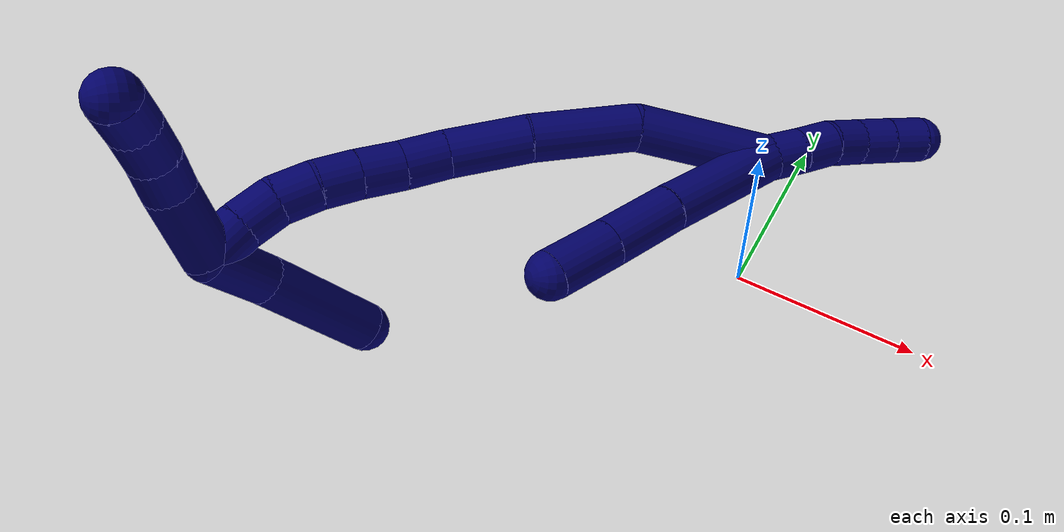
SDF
<sdf version="1.7">
 <world name="default">
  <model name="photoneo_s_sensor">
   <static>1</static>
   <pose>0 0 2 1.57079 1.57079 3.14159</pose>
   <link name="link">
    <inertial><mass>0.1</mass></inertial>
    <sensor name="sensor" type="depth">
     <update_rate>30</update_rate>
     <camera>
      <horizontal_fov>1.22</horizontal_fov>
      <image><width>1920</width><height>1200</height><format>B8G8R8</format></image>
      <clip><near>0.1</near><far>4</far></clip>
      <depth_camera><output>points</output></depth_camera>
     </camera>
     <plugin name="camera_plugin" filename="libgazebo_ros_depth_camera.so">
      <baseline>0.2</baseline>
      <alwaysOn>1</alwaysOn>
      <updateRate>0.0</updateRate>
      <cameraName>camera_ir</cameraName>
      <imageTopicName>/camera/color/image_raw</imageTopicName>
      <cameraInfoTopicName>/camera/color/camera_info</cameraInfoTopicName>
      <depthImageTopicName>/camera/depth/image_raw</depthImageTopicName>
      <depthImageCameraInfoTopicName>/camera/depth/camera_info</depthImageCameraInfoTopicName>
      <pointCloudTopicName>/camera/depth/points</pointCloudTopicName>
      <frameName>fr_optical</frameName>
      <pointCloudCutoff>0.1</pointCloudCutoff>
      <pointCloudCutoffMax>2.0</pointCloudCutoffMax>
      <distortionK1>0</distortionK1>
      <distortionK2>0</distortionK2>
      <distortionK3>0</distortionK3>
      <distortionT1>0</distortionT1>
      <distortionT2>0</distortionT2>
      <CxPrime>0</CxPrime>
      <Cx>0</Cx>
      <Cy>0</Cy>
      <focalLength>0</focalLength>
      <hackBaseline>0</hackBaseline>
     </plugin>
    </sensor>
   </link>
  </model>
  <model name="bin">
   <static>1</static>
   <link name="bottom">
    <collision name="collision-bottom">
     <pose>0 0 -0.01 0 -0 0</pose>
     <geometry><box><size>0.8 0.6 0.02</size></box></geometry>
     <surface>
      <friction><ode><mu>100</mu><mu2>100</mu2></ode></friction>
      <contact><collide_bitmask>65535</collide_bitmask></contact>
     </surface>
    </collision>
   </link>
   <link name="west_wall">
    <collision name="collision-west_wall">
     <pose>-0.41 0 0.1 0 -0 0</pose>
     <geometry><box><size>0.02 0.6 0.2</size></box></geometry>
     <surface>
      <friction><ode><mu>100</mu><mu2>100</mu2></ode></friction>
      <contact><collide_bitmask>65535</collide_bitmask></contact>
     </surface>
    </collision>
   </link>
   <link name="east_wall">
    <collision name="collision-east_wall">
     <pose>0.41 0 0.1 0 -0 0</pose>
     <geometry><box><size>0.02 0.6 0.2</size></box></geometry>
     <surface>
      <friction><ode><mu>100</mu><mu2>100</mu2></ode></friction>
      <contact><collide_bitmask>65535</collide_bitmask></contact>
     </surface>
    </collision>
   </link>
   <link name="south_wall">
    <collision name="collision-south_wall">
     <pose>0 -0.31 0.1 0 -0 0</pose>
     <geometry><box><size>0.8 0.02 0.2</size></box></geometry>
     <surface>
      <friction><ode><mu>100</mu><mu2>100</mu2></ode></friction>
      <contact><collide_bitmask>65535</collide_bitmask></contact>
     </surface>
    </collision>
   </link>
   <link name="north_wall">
    <collision name="collision-north_wall">
     <pose>0 0.31 0.1 0 -0 0</pose>
     <geometry><box><size>0.8 0.02 0.2</size></box></geometry>
     <surface>
      <friction><ode><mu>100</mu><mu2>100</mu2></ode></friction>
      <contact><collide_bitmask>65535</collide_bitmask></contact>
     </surface>
    </collision>
   </link>
  </model>
  <model name="7">
   <static>0</static>
   <link name="7">
    <collision name="collision-cylinder-e_1_2_8">
     <pose>-0.001453 -0.009596 0.035865 0.261427 -0.039122 -0.005144</pose>
     <geometry><cylinder><radius>0.0125</radius><length>0.07431</length></cylinder></geometry>
     <surface>
      <friction><ode><mu>1.16</mu><mu2>1.16</mu2><slip1>0</slip1><slip2>0</slip2></ode></friction>
      <contact><ode><kp>1e+06</kp><kd>1</kd><max_vel>0</max_vel><min_depth>0.001</min_depth></ode></contact>
     </surface>
    </collision>
    <visual name="visual-cylinder-e_1_2_8">
     <pose>-0.001453 -0.009596 0.035865 0.261427 -0.039122 -0.005144</pose>
     <geometry><cylinder><radius>0.0125</radius><length>0.07431</length></cylinder></geometry>
     <material><ambient>0.003922 0 0.403922 1</ambient></material>
    </visual>
    <collision name="collision-cylinder-e_2_8_9">
     <pose>-0.004694 -0.025039 0.091191 0.291919 -0.08776 -0.012909</pose>
     <geometry><cylinder><radius>0.0125</radius><length>0.040798</length></cylinder></geometry>
     <surface>
      <friction><ode><mu>1.16</mu><mu2>1.16</mu2><slip1>0</slip1><slip2>0</slip2></ode></friction>
      <contact><ode><kp>1e+06</kp><kd>1</kd><max_vel>0</max_vel><min_depth>0.001</min_depth></ode></contact>
     </surface>
    </collision>
    <visual name="visual-cylinder-e_2_8_9">
     <pose>-0.004694 -0.025039 0.091191 0.291919 -0.08776 -0.012909</pose>
     <geometry><cylinder><radius>0.0125</radius><length>0.040798</length></cylinder></geometry>
     <material><ambient>0.003922 0 0.403922 1</ambient></material>
    </visual>
    <collision name="collision-cylinder-e_3_9_6">
     <pose>-0.007977 -0.035651 0.127368 0.277582 -0.085755 -0.011986</pose>
     <geometry><cylinder><radius>0.0125</radius><length>0.034892</length></cylinder></geometry>
     <surface>
      <friction><ode><mu>1.16</mu><mu2>1.16</mu2><slip1>0</slip1><slip2>0</slip2></ode></friction>
      <contact><ode><kp>1e+06</kp><kd>1</kd><max_vel>0</max_vel><min_depth>0.001</min_depth></ode></contact>
     </surface>
    </collision>
    <visual name="visual-cylinder-e_3_9_6">
     <pose>-0.007977 -0.035651 0.127368 0.277582 -0.085755 -0.011986</pose>
     <geometry><cylinder><radius>0.0125</radius><length>0.034892</length></cylinder></geometry>
     <material><ambient>0.003922 0 0.403922 1</ambient></material>
    </visual>
    <collision name="collision-cylinder-e_1_2_10">
     <pose>0.001958 0.000144 -0.009805 -3.12692 0.19712 -2.99351</pose>
     <geometry><cylinder><radius>0.0125</radius><length>0.02</length></cylinder></geometry>
     <surface>
      <friction><ode><mu>1.16</mu><mu2>1.16</mu2><slip1>0</slip1><slip2>0</slip2></ode></friction>
      <contact><ode><kp>1e+06</kp><kd>1</kd><max_vel>0</max_vel><min_depth>0.001</min_depth></ode></contact>
     </surface>
    </collision>
    <visual name="visual-cylinder-e_1_2_10">
     <pose>0.001958 0.000144 -0.009805 -3.12692 0.19712 -2.99351</pose>
     <geometry><cylinder><radius>0.0125</radius><length>0.02</length></cylinder></geometry>
     <material><ambient>0.003922 0 0.403922 1</ambient></material>
    </visual>
    <collision name="collision-cylinder-e_2_10_11">
     <pose>0.00577 0.000833 -0.029422 -3.08608 0.186352 -2.56404</pose>
     <geometry><cylinder><radius>0.0125</radius><length>0.02</length></cylinder></geometry>
     <surface>
      <friction><ode><mu>1.16</mu><mu2>1.16</mu2><slip1>0</slip1><slip2>0</slip2></ode></friction>
      <contact><ode><kp>1e+06</kp><kd>1</kd><max_vel>0</max_vel><min_depth>0.001</min_depth></ode></contact>
     </surface>
    </collision>
    <visual name="visual-cylinder-e_2_10_11">
     <pose>0.00577 0.000833 -0.029422 -3.08608 0.186352 -2.56404</pose>
     <geometry><cylinder><radius>0.0125</radius><length>0.02</length></cylinder></geometry>
     <material><ambient>0.003922 0 0.403922 1</ambient></material>
    </visual>
    <collision name="collision-cylinder-e_3_11_12">
     <pose>0.007855 0.000744 -0.049211 3.07814 0.023288 0.703351</pose>
     <geometry><cylinder><radius>0.0125</radius><length>0.02</length></cylinder></geometry>
     <surface>
      <friction><ode><mu>1.16</mu><mu2>1.16</mu2><slip1>0</slip1><slip2>0</slip2></ode></friction>
      <contact><ode><kp>1e+06</kp><kd>1</kd><max_vel>0</max_vel><min_depth>0.001</min_depth></ode></contact>
     </surface>
    </collision>
    <visual name="visual-cylinder-e_3_11_12">
     <pose>0.007855 0.000744 -0.049211 3.07814 0.023288 0.703351</pose>
     <geometry><cylinder><radius>0.0125</radius><length>0.02</length></cylinder></geometry>
     <material><ambient>0.003922 0 0.403922 1</ambient></material>
    </visual>
    <collision name="collision-cylinder-e_4_12_13">
     <pose>0.010255 -0.001447 -0.068826 2.98141 0.218447 1.87793</pose>
     <geometry><cylinder><radius>0.0125</radius><length>0.02</length></cylinder></geometry>
     <surface>
      <friction><ode><mu>1.16</mu><mu2>1.16</mu2><slip1>0</slip1><slip2>0</slip2></ode></friction>
      <contact><ode><kp>1e+06</kp><kd>1</kd><max_vel>0</max_vel><min_depth>0.001</min_depth></ode></contact>
     </surface>
    </collision>
    <visual name="visual-cylinder-e_4_12_13">
     <pose>0.010255 -0.001447 -0.068826 2.98141 0.218447 1.87793</pose>
     <geometry><cylinder><radius>0.0125</radius><length>0.02</length></cylinder></geometry>
     <material><ambient>0.003922 0 0.403922 1</ambient></material>
    </visual>
    <collision name="collision-cylinder-e_5_13_5">
     <pose>0.014652 -0.004693 -0.088064 2.96742 0.224899 1.8253</pose>
     <geometry><cylinder><radius>0.0125</radius><length>0.02</length></cylinder></geometry>
     <surface>
      <friction><ode><mu>1.16</mu><mu2>1.16</mu2><slip1>0</slip1><slip2>0</slip2></ode></friction>
      <contact><ode><kp>1e+06</kp><kd>1</kd><max_vel>0</max_vel><min_depth>0.001</min_depth></ode></contact>
     </surface>
    </collision>
    <visual name="visual-cylinder-e_5_13_5">
     <pose>0.014652 -0.004693 -0.088064 2.96742 0.224899 1.8253</pose>
     <geometry><cylinder><radius>0.0125</radius><length>0.02</length></cylinder></geometry>
     <material><ambient>0.003922 0 0.403922 1</ambient></material>
    </visual>
    <collision name="collision-cylinder-e_1_2_14">
     <pose>-0.006175 0.015286 0.033328 -0.430033 -0.166858 0.036521</pose>
     <geometry><cylinder><radius>0.0125</radius><length>0.074365</length></cylinder></geometry>
     <surface>
      <friction><ode><mu>1.16</mu><mu2>1.16</mu2><slip1>0</slip1><slip2>0</slip2></ode></friction>
      <contact><ode><kp>1e+06</kp><kd>1</kd><max_vel>0</max_vel><min_depth>0.001</min_depth></ode></contact>
     </surface>
    </collision>
    <visual name="visual-cylinder-e_1_2_14">
     <pose>-0.006175 0.015286 0.033328 -0.430033 -0.166858 0.036521</pose>
     <geometry><cylinder><radius>0.0125</radius><length>0.074365</length></cylinder></geometry>
     <material><ambient>0.003922 0 0.403922 1</ambient></material>
    </visual>
    <collision name="collision-cylinder-e_2_14_15">
     <pose>-0.020161 0.03377 0.093782 -0.117346 -0.278506 0.016466</pose>
     <geometry><cylinder><radius>0.0125</radius><length>0.056819</length></cylinder></geometry>
     <surface>
      <friction><ode><mu>1.16</mu><mu2>1.16</mu2><slip1>0</slip1><slip2>0</slip2></ode></friction>
      <contact><ode><kp>1e+06</kp><kd>1</kd><max_vel>0</max_vel><min_depth>0.001</min_depth></ode></contact>
     </surface>
    </collision>
    <visual name="visual-cylinder-e_2_14_15">
     <pose>-0.020161 0.03377 0.093782 -0.117346 -0.278506 0.016466</pose>
     <geometry><cylinder><radius>0.0125</radius><length>0.056819</length></cylinder></geometry>
     <material><ambient>0.003922 0 0.403922 1</ambient></material>
    </visual>
    <collision name="collision-cylinder-e_3_15_16">
     <pose>-0.035613 0.03822 0.140658 -0.063326 -0.368505 0.011806</pose>
     <geometry><cylinder><radius>0.0125</radius><length>0.042425</length></cylinder></geometry>
     <surface>
      <friction><ode><mu>1.16</mu><mu2>1.16</mu2><slip1>0</slip1><slip2>0</slip2></ode></friction>
      <contact><ode><kp>1e+06</kp><kd>1</kd><max_vel>0</max_vel><min_depth>0.001</min_depth></ode></contact>
     </surface>
    </collision>
    <visual name="visual-cylinder-e_3_15_16">
     <pose>-0.035613 0.03822 0.140658 -0.063326 -0.368505 0.011806</pose>
     <geometry><cylinder><radius>0.0125</radius><length>0.042425</length></cylinder></geometry>
     <material><ambient>0.003922 0 0.403922 1</ambient></material>
    </visual>
    <collision name="collision-cylinder-e_4_16_17">
     <pose>-0.045939 0.038788 0.171872 0.059624 -0.229615 -0.006878</pose>
     <geometry><cylinder><radius>0.0125</radius><length>0.023591</length></cylinder></geometry>
     <surface>
      <friction><ode><mu>1.16</mu><mu2>1.16</mu2><slip1>0</slip1><slip2>0</slip2></ode></friction>
      <contact><ode><kp>1e+06</kp><kd>1</kd><max_vel>0</max_vel><min_depth>0.001</min_depth></ode></contact>
     </surface>
    </collision>
    <visual name="visual-cylinder-e_4_16_17">
     <pose>-0.045939 0.038788 0.171872 0.059624 -0.229615 -0.006878</pose>
     <geometry><cylinder><radius>0.0125</radius><length>0.023591</length></cylinder></geometry>
     <material><ambient>0.003922 0 0.403922 1</ambient></material>
    </visual>
    <collision name="collision-cylinder-e_5_17_18">
     <pose>-0.050525 0.037828 0.194224 0.025285 -0.172925 -0.002192</pose>
     <geometry><cylinder><radius>0.0125</radius><length>0.022109</length></cylinder></geometry>
     <surface>
      <friction><ode><mu>1.16</mu><mu2>1.16</mu2><slip1>0</slip1><slip2>0</slip2></ode></friction>
      <contact><ode><kp>1e+06</kp><kd>1</kd><max_vel>0</max_vel><min_depth>0.001</min_depth></ode></contact>
     </surface>
    </collision>
    <visual name="visual-cylinder-e_5_17_18">
     <pose>-0.050525 0.037828 0.194224 0.025285 -0.172925 -0.002192</pose>
     <geometry><cylinder><radius>0.0125</radius><length>0.022109</length></cylinder></geometry>
     <material><ambient>0.003922 0 0.403922 1</ambient></material>
    </visual>
    <collision name="collision-cylinder-e_6_18_19">
     <pose>-0.054147 0.03668 0.215071 0.087409 -0.17031 -0.007466</pose>
     <geometry><cylinder><radius>0.0125</radius><length>0.02029</length></cylinder></geometry>
     <surface>
      <friction><ode><mu>1.16</mu><mu2>1.16</mu2><slip1>0</slip1><slip2>0</slip2></ode></friction>
      <contact><ode><kp>1e+06</kp><kd>1</kd><max_vel>0</max_vel><min_depth>0.001</min_depth></ode></contact>
     </surface>
    </collision>
    <visual name="visual-cylinder-e_6_18_19">
     <pose>-0.054147 0.03668 0.215071 0.087409 -0.17031 -0.007466</pose>
     <geometry><cylinder><radius>0.0125</radius><length>0.02029</length></cylinder></geometry>
     <material><ambient>0.003922 0 0.403922 1</ambient></material>
    </visual>
    <collision name="collision-cylinder-e_7_19_20">
     <pose>-0.058963 0.034159 0.23452 0.17202 -0.311061 -0.027037</pose>
     <geometry><cylinder><radius>0.0125</radius><length>0.020234</length></cylinder></geometry>
     <surface>
      <friction><ode><mu>1.16</mu><mu2>1.16</mu2><slip1>0</slip1><slip2>0</slip2></ode></friction>
      <contact><ode><kp>1e+06</kp><kd>1</kd><max_vel>0</max_vel><min_depth>0.001</min_depth></ode></contact>
     </surface>
    </collision>
    <visual name="visual-cylinder-e_7_19_20">
     <pose>-0.058963 0.034159 0.23452 0.17202 -0.311061 -0.027037</pose>
     <geometry><cylinder><radius>0.0125</radius><length>0.020234</length></cylinder></geometry>
     <material><ambient>0.003922 0 0.403922 1</ambient></material>
    </visual>
    <collision name="collision-cylinder-e_8_20_21">
     <pose>-0.064877 0.028355 0.252692 0.446299 -0.284763 -0.065038</pose>
     <geometry><cylinder><radius>0.0125</radius><length>0.020061</length></cylinder></geometry>
     <surface>
      <friction><ode><mu>1.16</mu><mu2>1.16</mu2><slip1>0</slip1><slip2>0</slip2></ode></friction>
      <contact><ode><kp>1e+06</kp><kd>1</kd><max_vel>0</max_vel><min_depth>0.001</min_depth></ode></contact>
     </surface>
    </collision>
    <visual name="visual-cylinder-e_8_20_21">
     <pose>-0.064877 0.028355 0.252692 0.446299 -0.284763 -0.065038</pose>
     <geometry><cylinder><radius>0.0125</radius><length>0.020061</length></cylinder></geometry>
     <material><ambient>0.003922 0 0.403922 1</ambient></material>
    </visual>
    <collision name="collision-cylinder-e_9_21_1">
     <pose>-0.069789 0.018594 0.269454 0.606692 -0.209846 -0.065901</pose>
     <geometry><cylinder><radius>0.0125</radius><length>0.020106</length></cylinder></geometry>
     <surface>
      <friction><ode><mu>1.16</mu><mu2>1.16</mu2><slip1>0</slip1><slip2>0</slip2></ode></friction>
      <contact><ode><kp>1e+06</kp><kd>1</kd><max_vel>0</max_vel><min_depth>0.001</min_depth></ode></contact>
     </surface>
    </collision>
    <visual name="visual-cylinder-e_9_21_1">
     <pose>-0.069789 0.018594 0.269454 0.606692 -0.209846 -0.065901</pose>
     <geometry><cylinder><radius>0.0125</radius><length>0.020106</length></cylinder></geometry>
     <material><ambient>0.003922 0 0.403922 1</ambient></material>
    </visual>
    <collision name="collision-cylinder-e_1_1_22">
     <pose>-0.08144 0.008583 0.263371 2.84005 -0.572414 -2.18848</pose>
     <geometry><cylinder><radius>0.0125</radius><length>0.035285</length></cylinder></geometry>
     <surface>
      <friction><ode><mu>1.16</mu><mu2>1.16</mu2><slip1>0</slip1><slip2>0</slip2></ode></friction>
      <contact><ode><kp>1e+06</kp><kd>1</kd><max_vel>0</max_vel><min_depth>0.001</min_depth></ode></contact>
     </surface>
    </collision>
    <visual name="visual-cylinder-e_1_1_22">
     <pose>-0.08144 0.008583 0.263371 2.84005 -0.572414 -2.18848</pose>
     <geometry><cylinder><radius>0.0125</radius><length>0.035285</length></cylinder></geometry>
     <material><ambient>0.003922 0 0.403922 1</ambient></material>
    </visual>
    <collision name="collision-cylinder-e_2_22_4">
     <pose>-0.104415 -0.008358 0.222568 2.70174 -0.427634 -1.54171</pose>
     <geometry><cylinder><radius>0.0125</radius><length>0.064715</length></cylinder></geometry>
     <surface>
      <friction><ode><mu>1.16</mu><mu2>1.16</mu2><slip1>0</slip1><slip2>0</slip2></ode></friction>
      <contact><ode><kp>1e+06</kp><kd>1</kd><max_vel>0</max_vel><min_depth>0.001</min_depth></ode></contact>
     </surface>
    </collision>
    <visual name="visual-cylinder-e_2_22_4">
     <pose>-0.104415 -0.008358 0.222568 2.70174 -0.427634 -1.54171</pose>
     <geometry><cylinder><radius>0.0125</radius><length>0.064715</length></cylinder></geometry>
     <material><ambient>0.003922 0 0.403922 1</ambient></material>
    </visual>
    <collision name="collision-cylinder-e_1_1_23">
     <pose>-0.059001 0.024985 0.285968 -0.95796 0.720728 -0.386491</pose>
     <geometry><cylinder><radius>0.0125</radius><length>0.039041</length></cylinder></geometry>
     <surface>
      <friction><ode><mu>1.16</mu><mu2>1.16</mu2><slip1>0</slip1><slip2>0</slip2></ode></friction>
      <contact><ode><kp>1e+06</kp><kd>1</kd><max_vel>0</max_vel><min_depth>0.001</min_depth></ode></contact>
     </surface>
    </collision>
    <visual name="visual-cylinder-e_1_1_23">
     <pose>-0.059001 0.024985 0.285968 -0.95796 0.720728 -0.386491</pose>
     <geometry><cylinder><radius>0.0125</radius><length>0.039041</length></cylinder></geometry>
     <material><ambient>0.003922 0 0.403922 1</ambient></material>
    </visual>
    <collision name="collision-cylinder-e_2_23_24">
     <pose>-0.037708 0.041231 0.298203 -0.841223 0.975257 -0.465843</pose>
     <geometry><cylinder><radius>0.0125</radius><length>0.020321</length></cylinder></geometry>
     <surface>
      <friction><ode><mu>1.16</mu><mu2>1.16</mu2><slip1>0</slip1><slip2>0</slip2></ode></friction>
      <contact><ode><kp>1e+06</kp><kd>1</kd><max_vel>0</max_vel><min_depth>0.001</min_depth></ode></contact>
     </surface>
    </collision>
    <visual name="visual-cylinder-e_2_23_24">
     <pose>-0.037708 0.041231 0.298203 -0.841223 0.975257 -0.465843</pose>
     <geometry><cylinder><radius>0.0125</radius><length>0.020321</length></cylinder></geometry>
     <material><ambient>0.003922 0 0.403922 1</ambient></material>
    </visual>
    <collision name="collision-cylinder-e_3_24_25">
     <pose>-0.021037 0.049202 0.30639 -0.703492 0.962306 -0.378624</pose>
     <geometry><cylinder><radius>0.0125</radius><length>0.020132</length></cylinder></geometry>
     <surface>
      <friction><ode><mu>1.16</mu><mu2>1.16</mu2><slip1>0</slip1><slip2>0</slip2></ode></friction>
      <contact><ode><kp>1e+06</kp><kd>1</kd><max_vel>0</max_vel><min_depth>0.001</min_depth></ode></contact>
     </surface>
    </collision>
    <visual name="visual-cylinder-e_3_24_25">
     <pose>-0.021037 0.049202 0.30639 -0.703492 0.962306 -0.378624</pose>
     <geometry><cylinder><radius>0.0125</radius><length>0.020132</length></cylinder></geometry>
     <material><ambient>0.003922 0 0.403922 1</ambient></material>
    </visual>
    <collision name="collision-cylinder-e_4_25_3">
     <pose>-0.003847 0.05503 0.315353 -0.431262 1.05733 -0.254508</pose>
     <geometry><cylinder><radius>0.0125</radius><length>0.020506</length></cylinder></geometry>
     <surface>
      <friction><ode><mu>1.16</mu><mu2>1.16</mu2><slip1>0</slip1><slip2>0</slip2></ode></friction>
      <contact><ode><kp>1e+06</kp><kd>1</kd><max_vel>0</max_vel><min_depth>0.001</min_depth></ode></contact>
     </surface>
    </collision>
    <visual name="visual-cylinder-e_4_25_3">
     <pose>-0.003847 0.05503 0.315353 -0.431262 1.05733 -0.254508</pose>
     <geometry><cylinder><radius>0.0125</radius><length>0.020506</length></cylinder></geometry>
     <material><ambient>0.003922 0 0.403922 1</ambient></material>
    </visual>
    <collision name="collision-sphere-3">
     <pose>0.005084 0.057135 0.319928 0 -0 0</pose>
     <geometry><sphere><radius>0.0125</radius></sphere></geometry>
     <surface>
      <friction><ode><mu>1.16</mu><mu2>1.16</mu2><slip1>0</slip1><slip2>0</slip2></ode></friction>
      <contact><ode><kp>1e+06</kp><kd>1</kd><max_vel>0</max_vel><min_depth>0.001</min_depth></ode></contact>
     </surface>
    </collision>
    <visual name="visual-sphere-3">
     <pose>0.005084 0.057135 0.319928 0 -0 0</pose>
     <geometry><sphere><radius>0.0125</radius></sphere></geometry>
     <material><ambient>0.003922 0 0.403922 1</ambient></material>
    </visual>
    <collision name="collision-sphere-25">
     <pose>-0.012777 0.052925 0.310778 0 -0 0</pose>
     <geometry><sphere><radius>0.0125</radius></sphere></geometry>
     <surface>
      <friction><ode><mu>1.16</mu><mu2>1.16</mu2><slip1>0</slip1><slip2>0</slip2></ode></friction>
      <contact><ode><kp>1e+06</kp><kd>1</kd><max_vel>0</max_vel><min_depth>0.001</min_depth></ode></contact>
     </surface>
    </collision>
    <visual name="visual-sphere-25">
     <pose>-0.012777 0.052925 0.310778 0 -0 0</pose>
     <geometry><sphere><radius>0.0125</radius></sphere></geometry>
     <material><ambient>0.003922 0 0.403922 1</ambient></material>
    </visual>
    <collision name="collision-sphere-24">
     <pose>-0.029296 0.04548 0.302002 0 -0 0</pose>
     <geometry><sphere><radius>0.0125</radius></sphere></geometry>
     <surface>
      <friction><ode><mu>1.16</mu><mu2>1.16</mu2><slip1>0</slip1><slip2>0</slip2></ode></friction>
      <contact><ode><kp>1e+06</kp><kd>1</kd><max_vel>0</max_vel><min_depth>0.001</min_depth></ode></contact>
     </surface>
    </collision>
    <visual name="visual-sphere-24">
     <pose>-0.029296 0.04548 0.302002 0 -0 0</pose>
     <geometry><sphere><radius>0.0125</radius></sphere></geometry>
     <material><ambient>0.003922 0 0.403922 1</ambient></material>
    </visual>
    <collision name="collision-sphere-23">
     <pose>-0.046119 0.036982 0.294403 0 -0 0</pose>
     <geometry><sphere><radius>0.0125</radius></sphere></geometry>
     <surface>
      <friction><ode><mu>1.16</mu><mu2>1.16</mu2><slip1>0</slip1><slip2>0</slip2></ode></friction>
      <contact><ode><kp>1e+06</kp><kd>1</kd><max_vel>0</max_vel><min_depth>0.001</min_depth></ode></contact>
     </surface>
    </collision>
    <visual name="visual-sphere-23">
     <pose>-0.046119 0.036982 0.294403 0 -0 0</pose>
     <geometry><sphere><radius>0.0125</radius></sphere></geometry>
     <material><ambient>0.003922 0 0.403922 1</ambient></material>
    </visual>
    <collision name="collision-sphere-4">
     <pose>-0.117835 -0.020896 0.195928 0 -0 0</pose>
     <geometry><sphere><radius>0.0125</radius></sphere></geometry>
     <surface>
      <friction><ode><mu>1.16</mu><mu2>1.16</mu2><slip1>0</slip1><slip2>0</slip2></ode></friction>
      <contact><ode><kp>1e+06</kp><kd>1</kd><max_vel>0</max_vel><min_depth>0.001</min_depth></ode></contact>
     </surface>
    </collision>
    <visual name="visual-sphere-4">
     <pose>-0.117835 -0.020896 0.195928 0 -0 0</pose>
     <geometry><sphere><radius>0.0125</radius></sphere></geometry>
     <material><ambient>0.003922 0 0.403922 1</ambient></material>
    </visual>
    <collision name="collision-sphere-22">
     <pose>-0.090996 0.004179 0.249209 0 -0 0</pose>
     <geometry><sphere><radius>0.0125</radius></sphere></geometry>
     <surface>
      <friction><ode><mu>1.16</mu><mu2>1.16</mu2><slip1>0</slip1><slip2>0</slip2></ode></friction>
      <contact><ode><kp>1e+06</kp><kd>1</kd><max_vel>0</max_vel><min_depth>0.001</min_depth></ode></contact>
     </surface>
    </collision>
    <visual name="visual-sphere-22">
     <pose>-0.090996 0.004179 0.249209 0 -0 0</pose>
     <geometry><sphere><radius>0.0125</radius></sphere></geometry>
     <material><ambient>0.003922 0 0.403922 1</ambient></material>
    </visual>
    <collision name="collision-sphere-1">
     <pose>-0.071883 0.012988 0.277532 0 -0 0</pose>
     <geometry><sphere><radius>0.0125</radius></sphere></geometry>
     <surface>
      <friction><ode><mu>1.16</mu><mu2>1.16</mu2><slip1>0</slip1><slip2>0</slip2></ode></friction>
      <contact><ode><kp>1e+06</kp><kd>1</kd><max_vel>0</max_vel><min_depth>0.001</min_depth></ode></contact>
     </surface>
    </collision>
    <visual name="visual-sphere-1">
     <pose>-0.071883 0.012988 0.277532 0 -0 0</pose>
     <geometry><sphere><radius>0.0125</radius></sphere></geometry>
     <material><ambient>0.003922 0 0.403922 1</ambient></material>
    </visual>
    <collision name="collision-sphere-21">
     <pose>-0.067695 0.0242 0.261376 0 -0 0</pose>
     <geometry><sphere><radius>0.0125</radius></sphere></geometry>
     <surface>
      <friction><ode><mu>1.16</mu><mu2>1.16</mu2><slip1>0</slip1><slip2>0</slip2></ode></friction>
      <contact><ode><kp>1e+06</kp><kd>1</kd><max_vel>0</max_vel><min_depth>0.001</min_depth></ode></contact>
     </surface>
    </collision>
    <visual name="visual-sphere-21">
     <pose>-0.067695 0.0242 0.261376 0 -0 0</pose>
     <geometry><sphere><radius>0.0125</radius></sphere></geometry>
     <material><ambient>0.003922 0 0.403922 1</ambient></material>
    </visual>
    <collision name="collision-sphere-11">
     <pose>0.007622 0.001378 -0.039234 0 -0 0</pose>
     <geometry><sphere><radius>0.0125</radius></sphere></geometry>
     <surface>
      <friction><ode><mu>1.16</mu><mu2>1.16</mu2><slip1>0</slip1><slip2>0</slip2></ode></friction>
      <contact><ode><kp>1e+06</kp><kd>1</kd><max_vel>0</max_vel><min_depth>0.001</min_depth></ode></contact>
     </surface>
    </collision>
    <visual name="visual-sphere-11">
     <pose>0.007622 0.001378 -0.039234 0 -0 0</pose>
     <geometry><sphere><radius>0.0125</radius></sphere></geometry>
     <material><ambient>0.003922 0 0.403922 1</ambient></material>
    </visual>
    <collision name="collision-sphere-10">
     <pose>0.003917 0.000288 -0.019611 0 -0 0</pose>
     <geometry><sphere><radius>0.0125</radius></sphere></geometry>
     <surface>
      <friction><ode><mu>1.16</mu><mu2>1.16</mu2><slip1>0</slip1><slip2>0</slip2></ode></friction>
      <contact><ode><kp>1e+06</kp><kd>1</kd><max_vel>0</max_vel><min_depth>0.001</min_depth></ode></contact>
     </surface>
    </collision>
    <visual name="visual-sphere-10">
     <pose>0.003917 0.000288 -0.019611 0 -0 0</pose>
     <geometry><sphere><radius>0.0125</radius></sphere></geometry>
     <material><ambient>0.003922 0 0.403922 1</ambient></material>
    </visual>
    <collision name="collision-sphere-6">
     <pose>-0.009471 -0.040414 0.144085 0 -0 0</pose>
     <geometry><sphere><radius>0.0125</radius></sphere></geometry>
     <surface>
      <friction><ode><mu>1.16</mu><mu2>1.16</mu2><slip1>0</slip1><slip2>0</slip2></ode></friction>
      <contact><ode><kp>1e+06</kp><kd>1</kd><max_vel>0</max_vel><min_depth>0.001</min_depth></ode></contact>
     </surface>
    </collision>
    <visual name="visual-sphere-6">
     <pose>-0.009471 -0.040414 0.144085 0 -0 0</pose>
     <geometry><sphere><radius>0.0125</radius></sphere></geometry>
     <material><ambient>0.003922 0 0.403922 1</ambient></material>
    </visual>
    <collision name="collision-sphere-9">
     <pose>-0.006482 -0.030888 0.110652 0 -0 0</pose>
     <geometry><sphere><radius>0.0125</radius></sphere></geometry>
     <surface>
      <friction><ode><mu>1.16</mu><mu2>1.16</mu2><slip1>0</slip1><slip2>0</slip2></ode></friction>
      <contact><ode><kp>1e+06</kp><kd>1</kd><max_vel>0</max_vel><min_depth>0.001</min_depth></ode></contact>
     </surface>
    </collision>
    <visual name="visual-sphere-9">
     <pose>-0.006482 -0.030888 0.110652 0 -0 0</pose>
     <geometry><sphere><radius>0.0125</radius></sphere></geometry>
     <material><ambient>0.003922 0 0.403922 1</ambient></material>
    </visual>
    <collision name="collision-sphere-2">
     <geometry><sphere><radius>0.0125</radius></sphere></geometry>
     <surface>
      <friction><ode><mu>1.16</mu><mu2>1.16</mu2><slip1>0</slip1><slip2>0</slip2></ode></friction>
      <contact><ode><kp>1e+06</kp><kd>1</kd><max_vel>0</max_vel><min_depth>0.001</min_depth></ode></contact>
     </surface>
    </collision>
    <visual name="visual-sphere-2">
     <geometry><sphere><radius>0.0125</radius></sphere></geometry>
     <material><ambient>0.003922 0 0.403922 1</ambient></material>
    </visual>
    <collision name="collision-sphere-19">
     <pose>-0.055866 0.035807 0.225031 0 -0 0</pose>
     <geometry><sphere><radius>0.0125</radius></sphere></geometry>
     <surface>
      <friction><ode><mu>1.16</mu><mu2>1.16</mu2><slip1>0</slip1><slip2>0</slip2></ode></friction>
      <contact><ode><kp>1e+06</kp><kd>1</kd><max_vel>0</max_vel><min_depth>0.001</min_depth></ode></contact>
     </surface>
    </collision>
    <visual name="visual-sphere-19">
     <pose>-0.055866 0.035807 0.225031 0 -0 0</pose>
     <geometry><sphere><radius>0.0125</radius></sphere></geometry>
     <material><ambient>0.003922 0 0.403922 1</ambient></material>
    </visual>
    <collision name="collision-sphere-8">
     <pose>-0.002906 -0.019191 0.07173 0 -0 0</pose>
     <geometry><sphere><radius>0.0125</radius></sphere></geometry>
     <surface>
      <friction><ode><mu>1.16</mu><mu2>1.16</mu2><slip1>0</slip1><slip2>0</slip2></ode></friction>
      <contact><ode><kp>1e+06</kp><kd>1</kd><max_vel>0</max_vel><min_depth>0.001</min_depth></ode></contact>
     </surface>
    </collision>
    <visual name="visual-sphere-8">
     <pose>-0.002906 -0.019191 0.07173 0 -0 0</pose>
     <geometry><sphere><radius>0.0125</radius></sphere></geometry>
     <material><ambient>0.003922 0 0.403922 1</ambient></material>
    </visual>
    <collision name="collision-sphere-12">
     <pose>0.008088 0.00011 -0.059188 0 -0 0</pose>
     <geometry><sphere><radius>0.0125</radius></sphere></geometry>
     <surface>
      <friction><ode><mu>1.16</mu><mu2>1.16</mu2><slip1>0</slip1><slip2>0</slip2></ode></friction>
      <contact><ode><kp>1e+06</kp><kd>1</kd><max_vel>0</max_vel><min_depth>0.001</min_depth></ode></contact>
     </surface>
    </collision>
    <visual name="visual-sphere-12">
     <pose>0.008088 0.00011 -0.059188 0 -0 0</pose>
     <geometry><sphere><radius>0.0125</radius></sphere></geometry>
     <material><ambient>0.003922 0 0.403922 1</ambient></material>
    </visual>
    <collision name="collision-sphere-13">
     <pose>0.012422 -0.003004 -0.078463 0 -0 0</pose>
     <geometry><sphere><radius>0.0125</radius></sphere></geometry>
     <surface>
      <friction><ode><mu>1.16</mu><mu2>1.16</mu2><slip1>0</slip1><slip2>0</slip2></ode></friction>
      <contact><ode><kp>1e+06</kp><kd>1</kd><max_vel>0</max_vel><min_depth>0.001</min_depth></ode></contact>
     </surface>
    </collision>
    <visual name="visual-sphere-13">
     <pose>0.012422 -0.003004 -0.078463 0 -0 0</pose>
     <geometry><sphere><radius>0.0125</radius></sphere></geometry>
     <material><ambient>0.003922 0 0.403922 1</ambient></material>
    </visual>
    <collision name="collision-sphere-5">
     <pose>0.016883 -0.006382 -0.097665 0 -0 0</pose>
     <geometry><sphere><radius>0.0125</radius></sphere></geometry>
     <surface>
      <friction><ode><mu>1.16</mu><mu2>1.16</mu2><slip1>0</slip1><slip2>0</slip2></ode></friction>
      <contact><ode><kp>1e+06</kp><kd>1</kd><max_vel>0</max_vel><min_depth>0.001</min_depth></ode></contact>
     </surface>
    </collision>
    <visual name="visual-sphere-5">
     <pose>0.016883 -0.006382 -0.097665 0 -0 0</pose>
     <geometry><sphere><radius>0.0125</radius></sphere></geometry>
     <material><ambient>0.003922 0 0.403922 1</ambient></material>
    </visual>
    <collision name="collision-sphere-14">
     <pose>-0.012351 0.030572 0.066655 0 -0 0</pose>
     <geometry><sphere><radius>0.0125</radius></sphere></geometry>
     <surface>
      <friction><ode><mu>1.16</mu><mu2>1.16</mu2><slip1>0</slip1><slip2>0</slip2></ode></friction>
      <contact><ode><kp>1e+06</kp><kd>1</kd><max_vel>0</max_vel><min_depth>0.001</min_depth></ode></contact>
     </surface>
    </collision>
    <visual name="visual-sphere-14">
     <pose>-0.012351 0.030572 0.066655 0 -0 0</pose>
     <geometry><sphere><radius>0.0125</radius></sphere></geometry>
     <material><ambient>0.003922 0 0.403922 1</ambient></material>
    </visual>
    <collision name="collision-sphere-15">
     <pose>-0.027971 0.036968 0.120909 0 -0 0</pose>
     <geometry><sphere><radius>0.0125</radius></sphere></geometry>
     <surface>
      <friction><ode><mu>1.16</mu><mu2>1.16</mu2><slip1>0</slip1><slip2>0</slip2></ode></friction>
      <contact><ode><kp>1e+06</kp><kd>1</kd><max_vel>0</max_vel><min_depth>0.001</min_depth></ode></contact>
     </surface>
    </collision>
    <visual name="visual-sphere-15">
     <pose>-0.027971 0.036968 0.120909 0 -0 0</pose>
     <geometry><sphere><radius>0.0125</radius></sphere></geometry>
     <material><ambient>0.003922 0 0.403922 1</ambient></material>
    </visual>
    <collision name="collision-sphere-16">
     <pose>-0.043254 0.039473 0.160407 0 -0 0</pose>
     <geometry><sphere><radius>0.0125</radius></sphere></geometry>
     <surface>
      <friction><ode><mu>1.16</mu><mu2>1.16</mu2><slip1>0</slip1><slip2>0</slip2></ode></friction>
      <contact><ode><kp>1e+06</kp><kd>1</kd><max_vel>0</max_vel><min_depth>0.001</min_depth></ode></contact>
     </surface>
    </collision>
    <visual name="visual-sphere-16">
     <pose>-0.043254 0.039473 0.160407 0 -0 0</pose>
     <geometry><sphere><radius>0.0125</radius></sphere></geometry>
     <material><ambient>0.003922 0 0.403922 1</ambient></material>
    </visual>
    <collision name="collision-sphere-17">
     <pose>-0.048623 0.038104 0.183338 0 -0 0</pose>
     <geometry><sphere><radius>0.0125</radius></sphere></geometry>
     <surface>
      <friction><ode><mu>1.16</mu><mu2>1.16</mu2><slip1>0</slip1><slip2>0</slip2></ode></friction>
      <contact><ode><kp>1e+06</kp><kd>1</kd><max_vel>0</max_vel><min_depth>0.001</min_depth></ode></contact>
     </surface>
    </collision>
    <visual name="visual-sphere-17">
     <pose>-0.048623 0.038104 0.183338 0 -0 0</pose>
     <geometry><sphere><radius>0.0125</radius></sphere></geometry>
     <material><ambient>0.003922 0 0.403922 1</ambient></material>
    </visual>
    <collision name="collision-sphere-18">
     <pose>-0.052428 0.037553 0.205111 0 -0 0</pose>
     <geometry><sphere><radius>0.0125</radius></sphere></geometry>
     <surface>
      <friction><ode><mu>1.16</mu><mu2>1.16</mu2><slip1>0</slip1><slip2>0</slip2></ode></friction>
      <contact><ode><kp>1e+06</kp><kd>1</kd><max_vel>0</max_vel><min_depth>0.001</min_depth></ode></contact>
     </surface>
    </collision>
    <visual name="visual-sphere-18">
     <pose>-0.052428 0.037553 0.205111 0 -0 0</pose>
     <geometry><sphere><radius>0.0125</radius></sphere></geometry>
     <material><ambient>0.003922 0 0.403922 1</ambient></material>
    </visual>
    <collision name="collision-sphere-20">
     <pose>-0.062059 0.03251 0.244009 0 -0 0</pose>
     <geometry><sphere><radius>0.0125</radius></sphere></geometry>
     <surface>
      <friction><ode><mu>1.16</mu><mu2>1.16</mu2><slip1>0</slip1><slip2>0</slip2></ode></friction>
      <contact><ode><kp>1e+06</kp><kd>1</kd><max_vel>0</max_vel><min_depth>0.001</min_depth></ode></contact>
     </surface>
    </collision>
    <visual name="visual-sphere-20">
     <pose>-0.062059 0.03251 0.244009 0 -0 0</pose>
     <geometry><sphere><radius>0.0125</radius></sphere></geometry>
     <material><ambient>0.003922 0 0.403922 1</ambient></material>
    </visual>
    <inertial>
     <pose>-0.031045 0.012578 0.134931 0 -0 0</pose>
     <mass>0.75</mass>
     <inertia><ixx>9.4e-05</ixx><ixy>0</ixy><ixz>0</ixz><iyy>0.000107</iyy><iyz>0</iyz><izz>4.8e-05</izz></inertia>
    </inertial>
   </link>
   <pose>-0.00792 0.042275 0.053054 0.76218 -1.06068 0.128715</pose>
  </model>
 </world>
</sdf>
